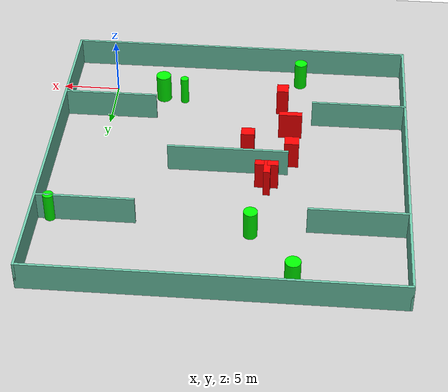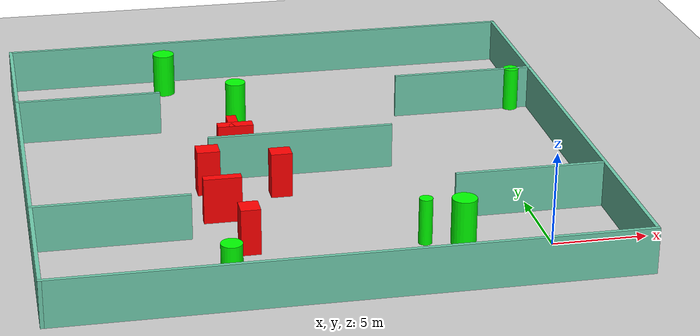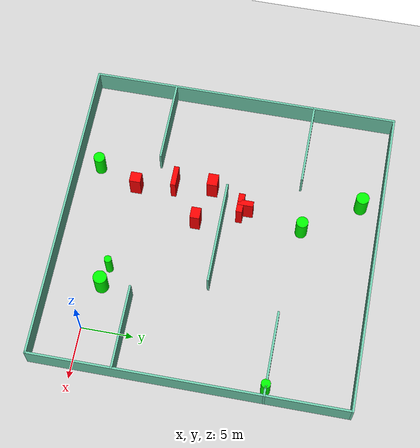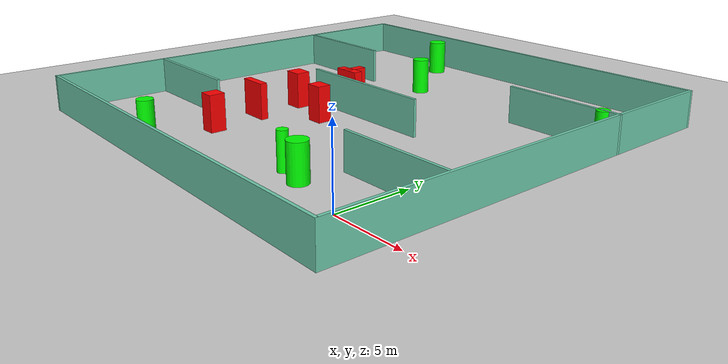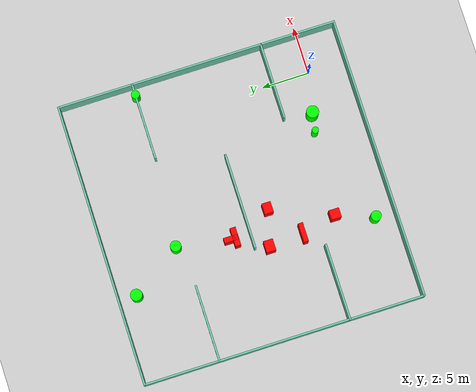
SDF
<sdf version="1.7">
 <world name="default">
  <light name="sun" type="directional">
   <pose>0 0 10 0 -0 0</pose>
   <diffuse>0.8 0.8 0.8 1</diffuse>
   <specular>0.2 0.2 0.2 1</specular>
   <attenuation>
    <range>1000</range>
    <constant>0.9</constant>
    <linear>0.01</linear>
    <quadratic>0.001</quadratic>
   </attenuation>
   <direction>-0.5 0.1 -0.9</direction>
   <spot><inner_angle>0</inner_angle><outer_angle>0</outer_angle><falloff>0</falloff></spot>
  </light>
  <model name="ground_plane">
   <static>1</static>
   <link name="link">
    <collision name="collision">
     <geometry><plane><normal>0 0 1</normal><size>100 100</size></plane></geometry>
     <surface>
      <contact><collide_bitmask>65535</collide_bitmask></contact>
      <friction><ode><mu>100</mu><mu2>50</mu2></ode></friction>
     </surface>
    </collision>
    <visual name="visual">
     <cast_shadows>0</cast_shadows>
     <geometry><plane><normal>0 0 1</normal><size>100 100</size></plane></geometry>
     <material>
      <script><uri>file://media/materials/scripts/gazebo.material</uri><name>Gazebo/Grey</name></script>
     </material>
    </visual>
   </link>
  </model>
  <gravity>0 0 -9.8</gravity>
  <magnetic_field>6e-06 2.3e-05 -4.2e-05</magnetic_field>
  <atmosphere type="adiabatic"/>
  <physics type="ode">
   <max_step_size>0.001</max_step_size>
   <real_time_factor>1</real_time_factor>
   <real_time_update_rate>1000</real_time_update_rate>
  </physics>
  <scene><ambient>0.4 0.4 0.4 1</ambient><background>0.7 0.7 0.7 1</background><shadows>1</shadows></scene>
  <spherical_coordinates>
   <surface_model>EARTH_WGS84</surface_model>
   <latitude_deg>0</latitude_deg>
   <longitude_deg>0</longitude_deg>
   <elevation>0</elevation>
   <heading_deg>0</heading_deg>
  </spherical_coordinates>
  <model name="my_base_walls">
   <link name="Wall_10">
    <collision name="Wall_10_Collision">
     <geometry><box><size>8.2 0.2 2.5</size></box></geometry>
     <pose>0 0 1.25 0 -0 0</pose>
    </collision>
    <visual name="Wall_10_Visual">
     <pose>0 0 1.25 0 -0 0</pose>
     <geometry><box><size>8.2 0.2 2.5</size></box></geometry>
     <material>
      <script><uri>file://media/materials/scripts/gazebo.material</uri><name>Gazebo/Grey</name></script>
      <ambient>0.435294 0.796078 0.67451 1</ambient>
     </material>
     <meta><layer>0</layer></meta>
    </visual>
    <pose>-11 -7 0 0 -0 0</pose>
   </link>
   <link name="Wall_12">
    <collision name="Wall_12_Collision">
     <geometry><box><size>8.2 0.2 2.5</size></box></geometry>
     <pose>0 0 1.25 0 -0 0</pose>
    </collision>
    <visual name="Wall_12_Visual">
     <pose>0 0 1.25 0 -0 0</pose>
     <geometry><box><size>8.2 0.2 2.5</size></box></geometry>
     <material>
      <script><uri>file://media/materials/scripts/gazebo.material</uri><name>Gazebo/Grey</name></script>
      <ambient>0.435294 0.796078 0.67451 1</ambient>
     </material>
     <meta><layer>0</layer></meta>
    </visual>
    <pose>-11 7 0 0 -0 0</pose>
   </link>
   <link name="Wall_14">
    <collision name="Wall_14_Collision">
     <geometry><box><size>8.2 0.2 2.5</size></box></geometry>
     <pose>0 0 1.25 0 -0 0</pose>
    </collision>
    <visual name="Wall_14_Visual">
     <pose>0 0 1.25 0 -0 0</pose>
     <geometry><box><size>8.2 0.2 2.5</size></box></geometry>
     <material>
      <script><uri>file://media/materials/scripts/gazebo.material</uri><name>Gazebo/Grey</name></script>
      <ambient>0.435294 0.796078 0.67451 1</ambient>
     </material>
     <meta><layer>0</layer></meta>
    </visual>
    <pose>11 7 0 0 -0 3.14159</pose>
   </link>
   <link name="Wall_16">
    <collision name="Wall_16_Collision">
     <geometry><box><size>10.2 0.2 2.5</size></box></geometry>
     <pose>0 0 1.25 0 -0 0</pose>
    </collision>
    <visual name="Wall_16_Visual">
     <pose>0 0 1.25 0 -0 0</pose>
     <geometry><box><size>10.2 0.2 2.5</size></box></geometry>
     <material>
      <script><uri>file://media/materials/scripts/gazebo.material</uri><name>Gazebo/Grey</name></script>
      <ambient>0.435294 0.796078 0.67451 1</ambient>
     </material>
     <meta><layer>0</layer></meta>
    </visual>
    <pose>0 0 0 0 -0 3.14159</pose>
   </link>
   <link name="Wall_2">
    <collision name="Wall_2_Collision">
     <geometry><box><size>30.2 0.2 2.5</size></box></geometry>
     <pose>0 0 1.25 0 -0 0</pose>
    </collision>
    <visual name="Wall_2_Visual">
     <pose>0 0 1.25 0 -0 0</pose>
     <geometry><box><size>30.2 0.2 2.5</size></box></geometry>
     <material>
      <script><uri>file://media/materials/scripts/gazebo.material</uri><name>Gazebo/Grey</name></script>
      <ambient>0.435294 0.796078 0.67451 1</ambient>
     </material>
     <meta><layer>0</layer></meta>
    </visual>
    <pose>0 -15 0 0 -0 3.14159</pose>
   </link>
   <link name="Wall_3">
    <collision name="Wall_3_Collision">
     <geometry><box><size>30.2 0.2 2.5</size></box></geometry>
     <pose>0 0 1.25 0 -0 0</pose>
    </collision>
    <visual name="Wall_3_Visual">
     <pose>0 0 1.25 0 -0 0</pose>
     <geometry><box><size>30.2 0.2 2.5</size></box></geometry>
     <material>
      <script><uri>file://media/materials/scripts/gazebo.material</uri><name>Gazebo/Grey</name></script>
      <ambient>0.435294 0.796078 0.67451 1</ambient>
     </material>
     <meta><layer>0</layer></meta>
    </visual>
    <pose>-15 0 0 0 -0 1.5708</pose>
   </link>
   <link name="Wall_4">
    <collision name="Wall_4_Collision">
     <geometry><box><size>30.2 0.2 2.5</size></box></geometry>
     <pose>0 0 1.25 0 -0 0</pose>
    </collision>
    <visual name="Wall_4_Visual">
     <pose>0 0 1.25 0 -0 0</pose>
     <geometry><box><size>30.2 0.2 2.5</size></box></geometry>
     <material>
      <script><uri>file://media/materials/scripts/gazebo.material</uri><name>Gazebo/Grey</name></script>
      <ambient>0.435294 0.796078 0.67451 1</ambient>
     </material>
     <meta><layer>0</layer></meta>
    </visual>
    <pose>0 15 0 0 -0 0</pose>
   </link>
   <link name="Wall_6">
    <collision name="Wall_6_Collision">
     <geometry><box><size>30.2 0.2 2.5</size></box></geometry>
     <pose>0 0 1.25 0 -0 0</pose>
    </collision>
    <visual name="Wall_6_Visual">
     <pose>0 0 1.25 0 -0 0</pose>
     <geometry><box><size>30.2 0.2 2.5</size></box></geometry>
     <material>
      <script><uri>file://media/materials/scripts/gazebo.material</uri><name>Gazebo/Grey</name></script>
      <ambient>0.435294 0.796078 0.67451 1</ambient>
     </material>
     <meta><layer>0</layer></meta>
    </visual>
    <pose>15 0 0 0 -0 1.5708</pose>
   </link>
   <link name="Wall_8">
    <collision name="Wall_8_Collision">
     <geometry><box><size>8.2 0.2 2.5</size></box></geometry>
     <pose>0 0 1.25 0 -0 0</pose>
    </collision>
    <visual name="Wall_8_Visual">
     <pose>0 0 1.25 0 -0 0</pose>
     <geometry><box><size>8.2 0.2 2.5</size></box></geometry>
     <material>
      <script><uri>file://media/materials/scripts/gazebo.material</uri><name>Gazebo/Grey</name></script>
      <ambient>0.435294 0.796078 0.67451 1</ambient>
     </material>
     <meta><layer>0</layer></meta>
    </visual>
    <pose>11 -7 0 0 -0 3.14159</pose>
   </link>
   <static>1</static>
   <pose>-11 11 0 0 -0 0</pose>
  </model>
  <model name="cylinder1">
   <static>1</static>
   <link name="link">
    <inertial>
     <mass>1</mass>
     <inertia><ixx>0.5</ixx><ixy>0</ixy><ixz>0</ixz><iyy>0.5</iyy><iyz>0</iyz><izz>1</izz></inertia>
    </inertial>
    <collision name="collision">
     <geometry><cylinder><radius>0.35630502066958164</radius><length>2.5</length></cylinder></geometry>
    </collision>
    <visual name="visual">
     <geometry><cylinder><radius>0.35630502066958164</radius><length>2.5</length></cylinder></geometry>
     <material>
      <ambient>0 1 0 1</ambient>
      <diffuse>0 1 0 1</diffuse>
      <specular>0.1 0.1 0.1 1</specular>
      <emissive>0 0 0 0</emissive>
     </material>
    </visual>
   </link>
   <pose>-6.323841089575279 1.3571965888553486 1.25 0 0 0</pose>
  </model>
  <model name="cylinder2">
   <static>1</static>
   <link name="link">
    <inertial>
     <mass>1</mass>
     <inertia><ixx>0.5</ixx><ixy>0</ixy><ixz>0</ixz><iyy>0.5</iyy><iyz>0</iyz><izz>1</izz></inertia>
    </inertial>
    <collision name="collision">
     <geometry><cylinder><radius>0.5772925611651758</radius><length>2.5</length></cylinder></geometry>
    </collision>
    <visual name="visual">
     <geometry><cylinder><radius>0.5772925611651758</radius><length>2.5</length></cylinder></geometry>
     <material>
      <ambient>0 1 0 1</ambient>
      <diffuse>0 1 0 1</diffuse>
      <specular>0.1 0.1 0.1 1</specular>
      <emissive>0 0 0 0</emissive>
     </material>
    </visual>
   </link>
   <pose>-13.432682900976854 18.74702164980571 1.25 0 0 0</pose>
  </model>
  <model name="cylinder3">
   <static>1</static>
   <link name="link">
    <inertial>
     <mass>1</mass>
     <inertia><ixx>0.5</ixx><ixy>0</ixy><ixz>0</ixz><iyy>0.5</iyy><iyz>0</iyz><izz>1</izz></inertia>
    </inertial>
    <collision name="collision">
     <geometry><cylinder><radius>0.445470755503915</radius><length>2.5</length></cylinder></geometry>
    </collision>
    <visual name="visual">
     <geometry><cylinder><radius>0.445470755503915</radius><length>2.5</length></cylinder></geometry>
     <material>
      <ambient>0 1 0 1</ambient>
      <diffuse>0 1 0 1</diffuse>
      <specular>0.1 0.1 0.1 1</specular>
      <emissive>0 0 0 0</emissive>
     </material>
    </visual>
   </link>
   <pose>2.902793021016244 17.981780202341113 1.25 0 0 0</pose>
  </model>
  <model name="cylinder4">
   <static>1</static>
   <link name="link">
    <inertial>
     <mass>1</mass>
     <inertia><ixx>0.5</ixx><ixy>0</ixy><ixz>0</ixz><iyy>0.5</iyy><iyz>0</iyz><izz>1</izz></inertia>
    </inertial>
    <collision name="collision">
     <geometry><cylinder><radius>0.6271116812970989</radius><length>2.5</length></cylinder></geometry>
    </collision>
    <visual name="visual">
     <geometry><cylinder><radius>0.6271116812970989</radius><length>2.5</length></cylinder></geometry>
     <material>
      <ambient>0 1 0 1</ambient>
      <diffuse>0 1 0 1</diffuse>
      <specular>0.1 0.1 0.1 1</specular>
      <emissive>0 0 0 0</emissive>
     </material>
    </visual>
   </link>
   <pose>-17.004864825447417 24.079461490752397 1.25 0 0 0</pose>
  </model>
  <model name="cylinder5">
   <static>1</static>
   <link name="link">
    <inertial>
     <mass>1</mass>
     <inertia><ixx>0.5</ixx><ixy>0</ixy><ixz>0</ixz><iyy>0.5</iyy><iyz>0</iyz><izz>1</izz></inertia>
    </inertial>
    <collision name="collision">
     <geometry><cylinder><radius>0.6577198050277928</radius><length>2.5</length></cylinder></geometry>
    </collision>
    <visual name="visual">
     <geometry><cylinder><radius>0.6577198050277928</radius><length>2.5</length></cylinder></geometry>
     <material>
      <ambient>0 1 0 1</ambient>
      <diffuse>0 1 0 1</diffuse>
      <specular>0.1 0.1 0.1 1</specular>
      <emissive>0 0 0 0</emissive>
     </material>
    </visual>
   </link>
   <pose>-4.4026143700047555 1.0282009503481015 1.25 0 0 0</pose>
  </model>
  <model name="cylinder6">
   <static>1</static>
   <link name="link">
    <inertial>
     <mass>1</mass>
     <inertia><ixx>0.5</ixx><ixy>0</ixy><ixz>0</ixz><iyy>0.5</iyy><iyz>0</iyz><izz>1</izz></inertia>
    </inertial>
    <collision name="collision">
     <geometry><cylinder><radius>0.5518119920938269</radius><length>2.5</length></cylinder></geometry>
    </collision>
    <visual name="visual">
     <geometry><cylinder><radius>0.5518119920938269</radius><length>2.5</length></cylinder></geometry>
     <material>
      <ambient>0 1 0 1</ambient>
      <diffuse>0 1 0 1</diffuse>
      <specular>0.1 0.1 0.1 1</specular>
      <emissive>0 0 0 0</emissive>
     </material>
    </visual>
   </link>
   <pose>-16.70700641408304 -1.856684503524629 1.25 0 0 0</pose>
  </model>
  <model name="box1">
   <static>1</static>
   <link name="link">
    <inertial>
     <mass>1</mass>
     <inertia><ixx>0.083</ixx><ixy>0</ixy><ixz>0</ixz><iyy>0.083</iyy><iyz>0</iyz><izz>0.083</izz></inertia>
    </inertial>
    <collision name="collision">
     <geometry><box><size>1.9620817446455465 0.6114580837892025 2.5</size></box></geometry>
    </collision>
    <visual name="visual">
     <geometry><box><size>1.9620817446455465 0.6114580837892025 2.5</size></box></geometry>
     <material>
      <ambient>1 0 0 1</ambient>
      <diffuse>1 0 0 1</diffuse>
      <specular>0.1 0.1 0.1 1</specular>
      <emissive>0 0 0 0</emissive>
     </material>
    </visual>
    <sensor name="my_contact" type="contact">
     <contact><collision>box_collision</collision><topic>__default_topic__</topic></contact>
    </sensor>
   </link>
   <pose>-14.372881764737004 12.596046778461764 1.25 0 0 0</pose>
  </model>
  <model name="box2">
   <static>1</static>
   <link name="link">
    <inertial>
     <mass>1</mass>
     <inertia><ixx>0.083</ixx><ixy>0</ixy><ixz>0</ixz><iyy>0.083</iyy><iyz>0</iyz><izz>0.083</izz></inertia>
    </inertial>
    <collision name="collision">
     <geometry><box><size>1.1487695870115906 0.9497996085400898 2.5</size></box></geometry>
    </collision>
    <visual name="visual">
     <geometry><box><size>1.1487695870115906 0.9497996085400898 2.5</size></box></geometry>
     <material>
      <ambient>1 0 0 1</ambient>
      <diffuse>1 0 0 1</diffuse>
      <specular>0.1 0.1 0.1 1</specular>
      <emissive>0 0 0 0</emissive>
     </material>
    </visual>
    <sensor name="my_contact" type="contact">
     <contact><collision>box_collision</collision><topic>__default_topic__</topic></contact>
    </sensor>
   </link>
   <pose>-12.54158428808765 8.537681389424112 1.25 0 0 0</pose>
  </model>
  <model name="box3">
   <static>1</static>
   <link name="link">
    <inertial>
     <mass>1</mass>
     <inertia><ixx>0.083</ixx><ixy>0</ixy><ixz>0</ixz><iyy>0.083</iyy><iyz>0</iyz><izz>0.083</izz></inertia>
    </inertial>
    <collision name="collision">
     <geometry><box><size>1.232788996259627 1.0194961280690735 2.5</size></box></geometry>
    </collision>
    <visual name="visual">
     <geometry><box><size>1.232788996259627 1.0194961280690735 2.5</size></box></geometry>
     <material>
      <ambient>1 0 0 1</ambient>
      <diffuse>1 0 0 1</diffuse>
      <specular>0.1 0.1 0.1 1</specular>
      <emissive>0 0 0 0</emissive>
     </material>
    </visual>
    <sensor name="my_contact" type="contact">
     <contact><collision>box_collision</collision><topic>__default_topic__</topic></contact>
    </sensor>
   </link>
   <pose>-16.32708240945263 9.525371043784904 1.25 0 0 0</pose>
  </model>
  <model name="box4">
   <static>1</static>
   <link name="link">
    <inertial>
     <mass>1</mass>
     <inertia><ixx>0.083</ixx><ixy>0</ixy><ixz>0</ixz><iyy>0.083</iyy><iyz>0</iyz><izz>0.083</izz></inertia>
    </inertial>
    <collision name="collision">
     <geometry><box><size>2.022582073408124 0.5037817425635018 2.5</size></box></geometry>
    </collision>
    <visual name="visual">
     <geometry><box><size>2.022582073408124 0.5037817425635018 2.5</size></box></geometry>
     <material>
      <ambient>1 0 0 1</ambient>
      <diffuse>1 0 0 1</diffuse>
      <specular>0.1 0.1 0.1 1</specular>
      <emissive>0 0 0 0</emissive>
     </material>
    </visual>
    <sensor name="my_contact" type="contact">
     <contact><collision>box_collision</collision><topic>__default_topic__</topic></contact>
    </sensor>
   </link>
   <pose>-16.06840838895496 5.808111159091402 1.25 0 0 0</pose>
  </model>
  <model name="box5">
   <static>1</static>
   <link name="link">
    <inertial>
     <mass>1</mass>
     <inertia><ixx>0.083</ixx><ixy>0</ixy><ixz>0</ixz><iyy>0.083</iyy><iyz>0</iyz><izz>0.083</izz></inertia>
    </inertial>
    <collision name="collision">
     <geometry><box><size>1.0304742412676924 1.0824784694491627 2.5</size></box></geometry>
    </collision>
    <visual name="visual">
     <geometry><box><size>1.0304742412676924 1.0824784694491627 2.5</size></box></geometry>
     <material>
      <ambient>1 0 0 1</ambient>
      <diffuse>1 0 0 1</diffuse>
      <specular>0.1 0.1 0.1 1</specular>
      <emissive>0 0 0 0</emissive>
     </material>
    </visual>
    <sensor name="my_contact" type="contact">
     <contact><collision>box_collision</collision><topic>__default_topic__</topic></contact>
    </sensor>
   </link>
   <pose>-15.233519575093275 2.1047833224801504 1.25 0 0 0</pose>
  </model>
  <model name="box6">
   <static>1</static>
   <link name="link">
    <inertial>
     <mass>1</mass>
     <inertia><ixx>0.083</ixx><ixy>0</ixy><ixz>0</ixz><iyy>0.083</iyy><iyz>0</iyz><izz>0.083</izz></inertia>
    </inertial>
    <collision name="collision">
     <geometry><box><size>0.5564846977672214 1.5541554407671816 2.5</size></box></geometry>
    </collision>
    <visual name="visual">
     <geometry><box><size>0.5564846977672214 1.5541554407671816 2.5</size></box></geometry>
     <material>
      <ambient>1 0 0 1</ambient>
      <diffuse>1 0 0 1</diffuse>
      <specular>0.1 0.1 0.1 1</specular>
      <emissive>0 0 0 0</emissive>
     </material>
    </visual>
    <sensor name="my_contact" type="contact">
     <contact><collision>box_collision</collision><topic>__default_topic__</topic></contact>
    </sensor>
   </link>
   <pose>-14.433884034695986 13.069642653851137 1.25 0 0 0</pose>
  </model>
 </world>
</sdf>
